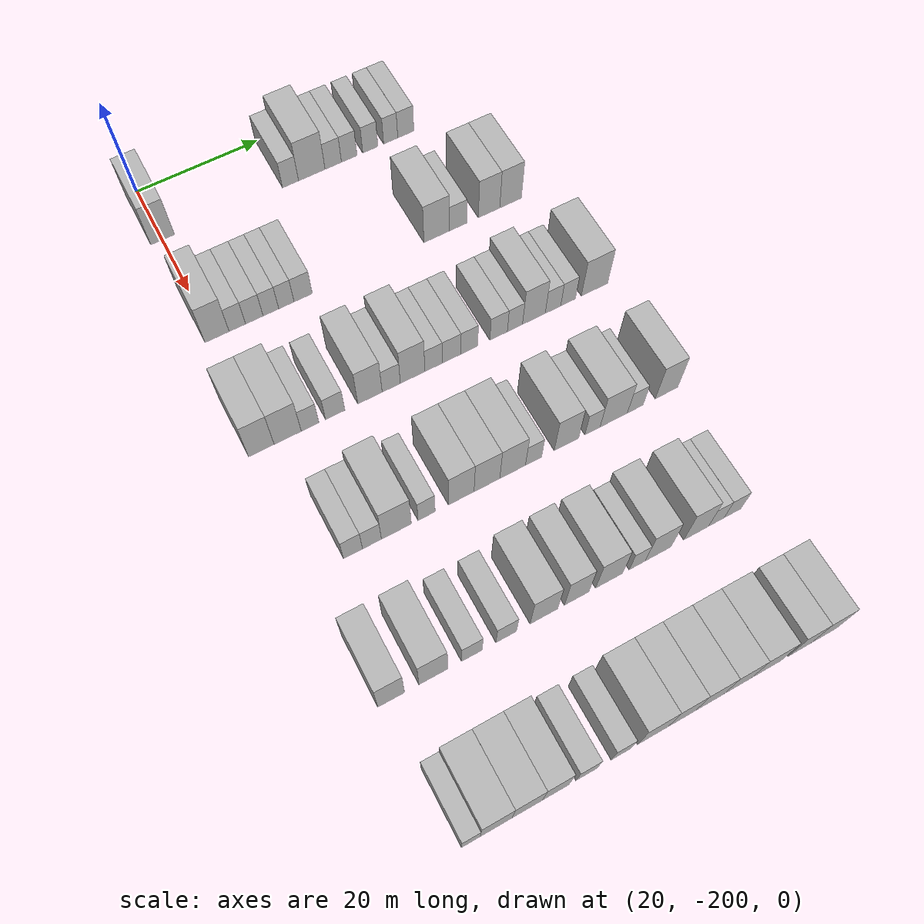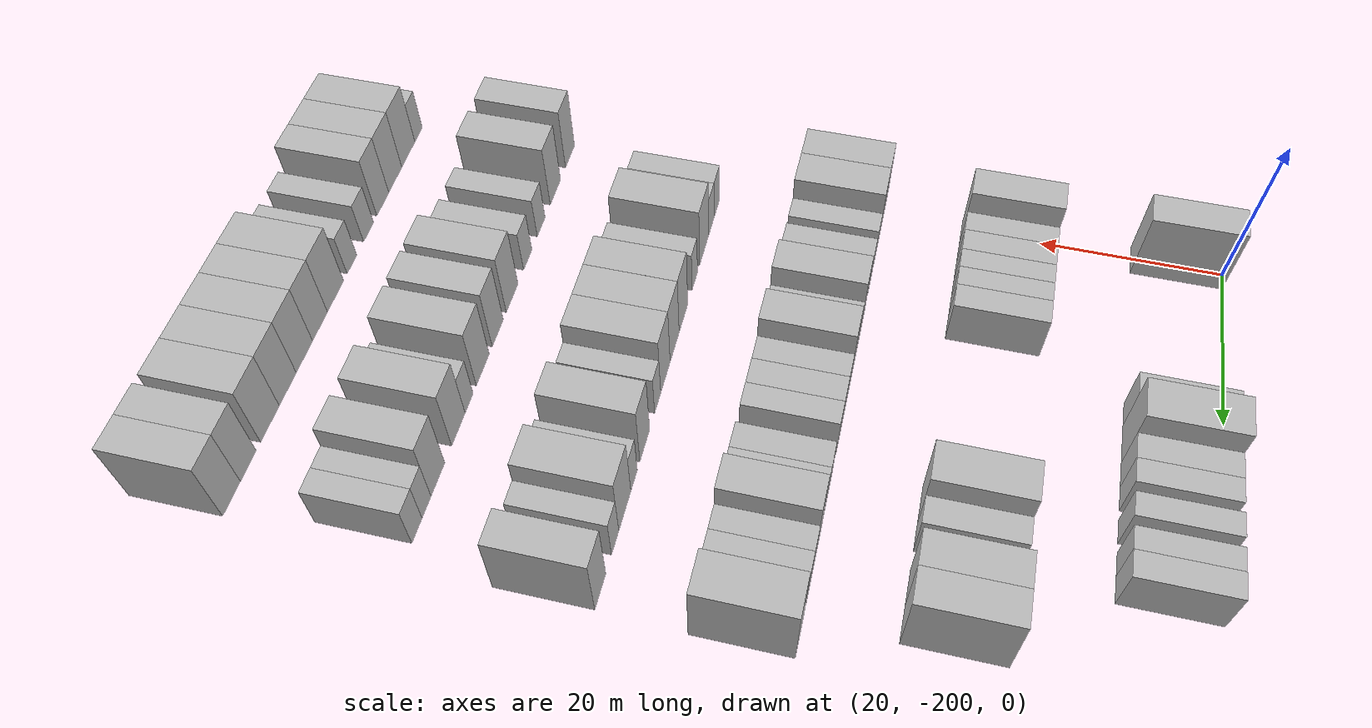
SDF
<sdf version="1.6">
 <world name="default">
  <model name="building_36">
   <static>1</static>
   <pose>25.0000 -199.8951 0 0.000000 0.000000 0.000000</pose>
   <link name="link">
    <pose>0 0 4.50 0 0 0</pose>
    <collision name="collision"><geometry><box><size>10.0000 3.7905 9.0000</size></box></geometry></collision>
    <visual name="visual">
     <cast_shadows>0</cast_shadows>
     <geometry><box><size>10.0000 3.7905 9.0000</size></box></geometry>
     <material>
      <script>
       <uri>model://HANNAS_wall/materials/scripts</uri>
       <uri>model://HANNAS_wall/materials/textures</uri>
       <name>vrc/HANNAS_wall</name>
      </script>
     </material>
    </visual>
   </link>
  </model>
  <model name="building_37">
   <static>1</static>
   <pose>25.0000 -178.9558 0 0.000000 0.000000 0.000000</pose>
   <link name="link">
    <pose>0 0 3.00 0 0 0</pose>
    <collision name="collision"><geometry><box><size>10.0000 2.6960 6.0000</size></box></geometry></collision>
    <visual name="visual">
     <cast_shadows>0</cast_shadows>
     <geometry><box><size>10.0000 2.6960 6.0000</size></box></geometry>
     <material>
      <script>
       <uri>model://HANNAS_wall/materials/scripts</uri>
       <uri>model://HANNAS_wall/materials/textures</uri>
       <name>vrc/HANNAS_wall</name>
      </script>
     </material>
    </visual>
   </link>
  </model>
  <model name="building_38">
   <static>1</static>
   <pose>25.0000 -175.3638 0 0.000000 0.000000 0.000000</pose>
   <link name="link">
    <pose>0 0 4.50 0 0 0</pose>
    <collision name="collision"><geometry><box><size>10.0000 4.4880 9.0000</size></box></geometry></collision>
    <visual name="visual">
     <cast_shadows>0</cast_shadows>
     <geometry><box><size>10.0000 4.4880 9.0000</size></box></geometry>
     <material>
      <script>
       <uri>model://HANNAS_wall/materials/scripts</uri>
       <uri>model://HANNAS_wall/materials/textures</uri>
       <name>vrc/HANNAS_wall</name>
      </script>
     </material>
    </visual>
   </link>
  </model>
  <model name="building_39">
   <static>1</static>
   <pose>25.0000 -171.7148 0 0.000000 0.000000 0.000000</pose>
   <link name="link">
    <pose>0 0 3.00 0 0 0</pose>
    <collision name="collision"><geometry><box><size>10.0000 2.8102 6.0000</size></box></geometry></collision>
    <visual name="visual">
     <cast_shadows>0</cast_shadows>
     <geometry><box><size>10.0000 2.8102 6.0000</size></box></geometry>
     <material>
      <script>
       <uri>model://HANNAS_wall/materials/scripts</uri>
       <uri>model://HANNAS_wall/materials/textures</uri>
       <name>vrc/HANNAS_wall</name>
      </script>
     </material>
    </visual>
   </link>
  </model>
  <model name="building_40">
   <static>1</static>
   <pose>25.0000 -168.9793 0 0.000000 0.000000 0.000000</pose>
   <link name="link">
    <pose>0 0 3.00 0 0 0</pose>
    <collision name="collision"><geometry><box><size>10.0000 2.6607 6.0000</size></box></geometry></collision>
    <visual name="visual">
     <cast_shadows>0</cast_shadows>
     <geometry><box><size>10.0000 2.6607 6.0000</size></box></geometry>
     <material>
      <script>
       <uri>model://HANNAS_wall/materials/scripts</uri>
       <uri>model://HANNAS_wall/materials/textures</uri>
       <name>vrc/HANNAS_wall</name>
      </script>
     </material>
    </visual>
   </link>
  </model>
  <model name="building_41">
   <static>1</static>
   <pose>25.0000 -165.3395 0 0.000000 0.000000 0.000000</pose>
   <link name="link">
    <pose>0 0 3.00 0 0 0</pose>
    <collision name="collision"><geometry><box><size>10.0000 2.6189 6.0000</size></box></geometry></collision>
    <visual name="visual">
     <cast_shadows>0</cast_shadows>
     <geometry><box><size>10.0000 2.6189 6.0000</size></box></geometry>
     <material>
      <script>
       <uri>model://HANNAS_wall/materials/scripts</uri>
       <uri>model://HANNAS_wall/materials/textures</uri>
       <name>vrc/HANNAS_wall</name>
      </script>
     </material>
    </visual>
   </link>
  </model>
  <model name="building_42">
   <static>1</static>
   <pose>25.0000 -161.7983 0 0.000000 0.000000 0.000000</pose>
   <link name="link">
    <pose>0 0 3.00 0 0 0</pose>
    <collision name="collision"><geometry><box><size>10.0000 2.4634 6.0000</size></box></geometry></collision>
    <visual name="visual">
     <cast_shadows>0</cast_shadows>
     <geometry><box><size>10.0000 2.4634 6.0000</size></box></geometry>
     <material>
      <script>
       <uri>model://HANNAS_wall/materials/scripts</uri>
       <uri>model://HANNAS_wall/materials/textures</uri>
       <name>vrc/HANNAS_wall</name>
      </script>
     </material>
    </visual>
   </link>
  </model>
  <model name="building_43">
   <static>1</static>
   <pose>25.0000 -159.1537 0 0.000000 0.000000 0.000000</pose>
   <link name="link">
    <pose>0 0 3.00 0 0 0</pose>
    <collision name="collision"><geometry><box><size>10.0000 2.8257 6.0000</size></box></geometry></collision>
    <visual name="visual">
     <cast_shadows>0</cast_shadows>
     <geometry><box><size>10.0000 2.8257 6.0000</size></box></geometry>
     <material>
      <script>
       <uri>model://HANNAS_wall/materials/scripts</uri>
       <uri>model://HANNAS_wall/materials/textures</uri>
       <name>vrc/HANNAS_wall</name>
      </script>
     </material>
    </visual>
   </link>
  </model>
  <model name="building_207">
   <static>1</static>
   <pose>44.0000 -199.3851 0 0.000000 0.000000 0.000000</pose>
   <link name="link">
    <pose>0 0 4.50 0 0 0</pose>
    <collision name="collision"><geometry><box><size>10.0000 3.7410 9.0000</size></box></geometry></collision>
    <visual name="visual">
     <cast_shadows>0</cast_shadows>
     <geometry><box><size>10.0000 3.7410 9.0000</size></box></geometry>
     <material>
      <script>
       <uri>model://HANNAS_wall/materials/scripts</uri>
       <uri>model://HANNAS_wall/materials/textures</uri>
       <name>vrc/HANNAS_wall</name>
      </script>
     </material>
    </visual>
   </link>
  </model>
  <model name="building_208">
   <static>1</static>
   <pose>44.0000 -196.2349 0 0.000000 0.000000 0.000000</pose>
   <link name="link">
    <pose>0 0 3.00 0 0 0</pose>
    <collision name="collision"><geometry><box><size>10.0000 2.5594 6.0000</size></box></geometry></collision>
    <visual name="visual">
     <cast_shadows>0</cast_shadows>
     <geometry><box><size>10.0000 2.5594 6.0000</size></box></geometry>
     <material>
      <script>
       <uri>model://HANNAS_wall/materials/scripts</uri>
       <uri>model://HANNAS_wall/materials/textures</uri>
       <name>vrc/HANNAS_wall</name>
      </script>
     </material>
    </visual>
   </link>
  </model>
  <model name="building_209">
   <static>1</static>
   <pose>44.0000 -193.5781 0 0.000000 0.000000 0.000000</pose>
   <link name="link">
    <pose>0 0 3.00 0 0 0</pose>
    <collision name="collision"><geometry><box><size>10.0000 2.7541 6.0000</size></box></geometry></collision>
    <visual name="visual">
     <cast_shadows>0</cast_shadows>
     <geometry><box><size>10.0000 2.7541 6.0000</size></box></geometry>
     <material>
      <script>
       <uri>model://HANNAS_wall/materials/scripts</uri>
       <uri>model://HANNAS_wall/materials/textures</uri>
       <name>vrc/HANNAS_wall</name>
      </script>
     </material>
    </visual>
   </link>
  </model>
  <model name="building_210">
   <static>1</static>
   <pose>44.0000 -190.9653 0 0.000000 0.000000 0.000000</pose>
   <link name="link">
    <pose>0 0 3.00 0 0 0</pose>
    <collision name="collision"><geometry><box><size>10.0000 2.4714 6.0000</size></box></geometry></collision>
    <visual name="visual">
     <cast_shadows>0</cast_shadows>
     <geometry><box><size>10.0000 2.4714 6.0000</size></box></geometry>
     <material>
      <script>
       <uri>model://HANNAS_wall/materials/scripts</uri>
       <uri>model://HANNAS_wall/materials/textures</uri>
       <name>vrc/HANNAS_wall</name>
      </script>
     </material>
    </visual>
   </link>
  </model>
  <model name="building_211">
   <static>1</static>
   <pose>44.0000 -188.5136 0 0.000000 0.000000 0.000000</pose>
   <link name="link">
    <pose>0 0 3.00 0 0 0</pose>
    <collision name="collision"><geometry><box><size>10.0000 2.4321 6.0000</size></box></geometry></collision>
    <visual name="visual">
     <cast_shadows>0</cast_shadows>
     <geometry><box><size>10.0000 2.4321 6.0000</size></box></geometry>
     <material>
      <script>
       <uri>model://HANNAS_wall/materials/scripts</uri>
       <uri>model://HANNAS_wall/materials/textures</uri>
       <name>vrc/HANNAS_wall</name>
      </script>
     </material>
    </visual>
   </link>
  </model>
  <model name="building_212">
   <static>1</static>
   <pose>44.0000 -185.8358 0 0.000000 0.000000 0.000000</pose>
   <link name="link">
    <pose>0 0 3.00 0 0 0</pose>
    <collision name="collision"><geometry><box><size>10.0000 2.9234 6.0000</size></box></geometry></collision>
    <visual name="visual">
     <cast_shadows>0</cast_shadows>
     <geometry><box><size>10.0000 2.9234 6.0000</size></box></geometry>
     <material>
      <script>
       <uri>model://HANNAS_wall/materials/scripts</uri>
       <uri>model://HANNAS_wall/materials/textures</uri>
       <name>vrc/HANNAS_wall</name>
      </script>
     </material>
    </visual>
   </link>
  </model>
  <model name="building_213">
   <static>1</static>
   <pose>44.0000 -163.8995 0 0.000000 0.000000 0.000000</pose>
   <link name="link">
    <pose>0 0 4.50 0 0 0</pose>
    <collision name="collision"><geometry><box><size>10.0000 4.3163 9.0000</size></box></geometry></collision>
    <visual name="visual">
     <cast_shadows>0</cast_shadows>
     <geometry><box><size>10.0000 4.3163 9.0000</size></box></geometry>
     <material>
      <script>
       <uri>model://HANNAS_wall/materials/scripts</uri>
       <uri>model://HANNAS_wall/materials/textures</uri>
       <name>vrc/HANNAS_wall</name>
      </script>
     </material>
    </visual>
   </link>
  </model>
  <model name="building_214">
   <static>1</static>
   <pose>44.0000 -160.2785 0 0.000000 0.000000 0.000000</pose>
   <link name="link">
    <pose>0 0 3.00 0 0 0</pose>
    <collision name="collision"><geometry><box><size>10.0000 2.9256 6.0000</size></box></geometry></collision>
    <visual name="visual">
     <cast_shadows>0</cast_shadows>
     <geometry><box><size>10.0000 2.9256 6.0000</size></box></geometry>
     <material>
      <script>
       <uri>model://HANNAS_wall/materials/scripts</uri>
       <uri>model://HANNAS_wall/materials/textures</uri>
       <name>vrc/HANNAS_wall</name>
      </script>
     </material>
    </visual>
   </link>
  </model>
  <model name="building_215">
   <static>1</static>
   <pose>44.0000 -154.9602 0 0.000000 0.000000 0.000000</pose>
   <link name="link">
    <pose>0 0 4.50 0 0 0</pose>
    <collision name="collision"><geometry><box><size>10.0000 3.7112 9.0000</size></box></geometry></collision>
    <visual name="visual">
     <cast_shadows>0</cast_shadows>
     <geometry><box><size>10.0000 3.7112 9.0000</size></box></geometry>
     <material>
      <script>
       <uri>model://HANNAS_wall/materials/scripts</uri>
       <uri>model://HANNAS_wall/materials/textures</uri>
       <name>vrc/HANNAS_wall</name>
      </script>
     </material>
    </visual>
   </link>
  </model>
  <model name="building_216">
   <static>1</static>
   <pose>44.0000 -151.2277 0 0.000000 0.000000 0.000000</pose>
   <link name="link">
    <pose>0 0 4.50 0 0 0</pose>
    <collision name="collision"><geometry><box><size>10.0000 3.7538 9.0000</size></box></geometry></collision>
    <visual name="visual">
     <cast_shadows>0</cast_shadows>
     <geometry><box><size>10.0000 3.7538 9.0000</size></box></geometry>
     <material>
      <script>
       <uri>model://HANNAS_wall/materials/scripts</uri>
       <uri>model://HANNAS_wall/materials/textures</uri>
       <name>vrc/HANNAS_wall</name>
      </script>
     </material>
    </visual>
   </link>
  </model>
  <model name="building_365">
   <static>1</static>
   <pose>63.0000 -201.1280 0 0.000000 0.000000 0.000000</pose>
   <link name="link">
    <pose>0 0 4.50 0 0 0</pose>
    <collision name="collision"><geometry><box><size>10.0000 3.8105 9.0000</size></box></geometry></collision>
    <visual name="visual">
     <cast_shadows>0</cast_shadows>
     <geometry><box><size>10.0000 3.8105 9.0000</size></box></geometry>
     <material>
      <script>
       <uri>model://HANNAS_wall/materials/scripts</uri>
       <uri>model://HANNAS_wall/materials/textures</uri>
       <name>vrc/HANNAS_wall</name>
      </script>
     </material>
    </visual>
   </link>
  </model>
  <model name="building_366">
   <static>1</static>
   <pose>63.0000 -197.1783 0 0.000000 0.000000 0.000000</pose>
   <link name="link">
    <pose>0 0 4.50 0 0 0</pose>
    <collision name="collision"><geometry><box><size>10.0000 4.0891 9.0000</size></box></geometry></collision>
    <visual name="visual">
     <cast_shadows>0</cast_shadows>
     <geometry><box><size>10.0000 4.0891 9.0000</size></box></geometry>
     <material>
      <script>
       <uri>model://HANNAS_wall/materials/scripts</uri>
       <uri>model://HANNAS_wall/materials/textures</uri>
       <name>vrc/HANNAS_wall</name>
      </script>
     </material>
    </visual>
   </link>
  </model>
  <model name="building_367">
   <static>1</static>
   <pose>63.0000 -193.7952 0 0.000000 0.000000 0.000000</pose>
   <link name="link">
    <pose>0 0 3.00 0 0 0</pose>
    <collision name="collision"><geometry><box><size>10.0000 2.6770 6.0000</size></box></geometry></collision>
    <visual name="visual">
     <cast_shadows>0</cast_shadows>
     <geometry><box><size>10.0000 2.6770 6.0000</size></box></geometry>
     <material>
      <script>
       <uri>model://HANNAS_wall/materials/scripts</uri>
       <uri>model://HANNAS_wall/materials/textures</uri>
       <name>vrc/HANNAS_wall</name>
      </script>
     </material>
    </visual>
   </link>
  </model>
  <model name="building_368">
   <static>1</static>
   <pose>63.0000 -189.9776 0 0.000000 0.000000 0.000000</pose>
   <link name="link">
    <pose>0 0 3.00 0 0 0</pose>
    <collision name="collision"><geometry><box><size>10.0000 2.9584 6.0000</size></box></geometry></collision>
    <visual name="visual">
     <cast_shadows>0</cast_shadows>
     <geometry><box><size>10.0000 2.9584 6.0000</size></box></geometry>
     <material>
      <script>
       <uri>model://HANNAS_wall/materials/scripts</uri>
       <uri>model://HANNAS_wall/materials/textures</uri>
       <name>vrc/HANNAS_wall</name>
      </script>
     </material>
    </visual>
   </link>
  </model>
  <model name="building_369">
   <static>1</static>
   <pose>63.0000 -184.6046 0 0.000000 0.000000 0.000000</pose>
   <link name="link">
    <pose>0 0 4.50 0 0 0</pose>
    <collision name="collision"><geometry><box><size>10.0000 3.7876 9.0000</size></box></geometry></collision>
    <visual name="visual">
     <cast_shadows>0</cast_shadows>
     <geometry><box><size>10.0000 3.7876 9.0000</size></box></geometry>
     <material>
      <script>
       <uri>model://HANNAS_wall/materials/scripts</uri>
       <uri>model://HANNAS_wall/materials/textures</uri>
       <name>vrc/HANNAS_wall</name>
      </script>
     </material>
    </visual>
   </link>
  </model>
  <model name="building_370">
   <static>1</static>
   <pose>63.0000 -181.2891 0 0.000000 0.000000 0.000000</pose>
   <link name="link">
    <pose>0 0 3.00 0 0 0</pose>
    <collision name="collision"><geometry><box><size>10.0000 2.8435 6.0000</size></box></geometry></collision>
    <visual name="visual">
     <cast_shadows>0</cast_shadows>
     <geometry><box><size>10.0000 2.8435 6.0000</size></box></geometry>
     <material>
      <script>
       <uri>model://HANNAS_wall/materials/scripts</uri>
       <uri>model://HANNAS_wall/materials/textures</uri>
       <name>vrc/HANNAS_wall</name>
      </script>
     </material>
    </visual>
   </link>
  </model>
  <model name="building_371">
   <static>1</static>
   <pose>63.0000 -177.9295 0 0.000000 0.000000 0.000000</pose>
   <link name="link">
    <pose>0 0 4.50 0 0 0</pose>
    <collision name="collision"><geometry><box><size>10.0000 3.8757 9.0000</size></box></geometry></collision>
    <visual name="visual">
     <cast_shadows>0</cast_shadows>
     <geometry><box><size>10.0000 3.8757 9.0000</size></box></geometry>
     <material>
      <script>
       <uri>model://HANNAS_wall/materials/scripts</uri>
       <uri>model://HANNAS_wall/materials/textures</uri>
       <name>vrc/HANNAS_wall</name>
      </script>
     </material>
    </visual>
   </link>
  </model>
  <model name="building_372">
   <static>1</static>
   <pose>63.0000 -174.5939 0 0.000000 0.000000 0.000000</pose>
   <link name="link">
    <pose>0 0 3.00 0 0 0</pose>
    <collision name="collision"><geometry><box><size>10.0000 2.7954 6.0000</size></box></geometry></collision>
    <visual name="visual">
     <cast_shadows>0</cast_shadows>
     <geometry><box><size>10.0000 2.7954 6.0000</size></box></geometry>
     <material>
      <script>
       <uri>model://HANNAS_wall/materials/scripts</uri>
       <uri>model://HANNAS_wall/materials/textures</uri>
       <name>vrc/HANNAS_wall</name>
      </script>
     </material>
    </visual>
   </link>
  </model>
  <model name="building_373">
   <static>1</static>
   <pose>63.0000 -171.7202 0 0.000000 0.000000 0.000000</pose>
   <link name="link">
    <pose>0 0 3.00 0 0 0</pose>
    <collision name="collision"><geometry><box><size>10.0000 2.9521 6.0000</size></box></geometry></collision>
    <visual name="visual">
     <cast_shadows>0</cast_shadows>
     <geometry><box><size>10.0000 2.9521 6.0000</size></box></geometry>
     <material>
      <script>
       <uri>model://HANNAS_wall/materials/scripts</uri>
       <uri>model://HANNAS_wall/materials/textures</uri>
       <name>vrc/HANNAS_wall</name>
      </script>
     </material>
    </visual>
   </link>
  </model>
  <model name="building_374">
   <static>1</static>
   <pose>63.0000 -168.8897 0 0.000000 0.000000 0.000000</pose>
   <link name="link">
    <pose>0 0 3.00 0 0 0</pose>
    <collision name="collision"><geometry><box><size>10.0000 2.7090 6.0000</size></box></geometry></collision>
    <visual name="visual">
     <cast_shadows>0</cast_shadows>
     <geometry><box><size>10.0000 2.7090 6.0000</size></box></geometry>
     <material>
      <script>
       <uri>model://HANNAS_wall/materials/scripts</uri>
       <uri>model://HANNAS_wall/materials/textures</uri>
       <name>vrc/HANNAS_wall</name>
      </script>
     </material>
    </visual>
   </link>
  </model>
  <model name="building_375">
   <static>1</static>
   <pose>63.0000 -164.1060 0 0.000000 0.000000 0.000000</pose>
   <link name="link">
    <pose>0 0 3.00 0 0 0</pose>
    <collision name="collision"><geometry><box><size>10.0000 2.8584 6.0000</size></box></geometry></collision>
    <visual name="visual">
     <cast_shadows>0</cast_shadows>
     <geometry><box><size>10.0000 2.8584 6.0000</size></box></geometry>
     <material>
      <script>
       <uri>model://HANNAS_wall/materials/scripts</uri>
       <uri>model://HANNAS_wall/materials/textures</uri>
       <name>vrc/HANNAS_wall</name>
      </script>
     </material>
    </visual>
   </link>
  </model>
  <model name="building_376">
   <static>1</static>
   <pose>63.0000 -161.4242 0 0.000000 0.000000 0.000000</pose>
   <link name="link">
    <pose>0 0 3.00 0 0 0</pose>
    <collision name="collision"><geometry><box><size>10.0000 2.5052 6.0000</size></box></geometry></collision>
    <visual name="visual">
     <cast_shadows>0</cast_shadows>
     <geometry><box><size>10.0000 2.5052 6.0000</size></box></geometry>
     <material>
      <script>
       <uri>model://HANNAS_wall/materials/scripts</uri>
       <uri>model://HANNAS_wall/materials/textures</uri>
       <name>vrc/HANNAS_wall</name>
      </script>
     </material>
    </visual>
   </link>
  </model>
  <model name="building_377">
   <static>1</static>
   <pose>63.0000 -158.2855 0 0.000000 0.000000 0.000000</pose>
   <link name="link">
    <pose>0 0 4.50 0 0 0</pose>
    <collision name="collision"><geometry><box><size>10.0000 3.7723 9.0000</size></box></geometry></collision>
    <visual name="visual">
     <cast_shadows>0</cast_shadows>
     <geometry><box><size>10.0000 3.7723 9.0000</size></box></geometry>
     <material>
      <script>
       <uri>model://HANNAS_wall/materials/scripts</uri>
       <uri>model://HANNAS_wall/materials/textures</uri>
       <name>vrc/HANNAS_wall</name>
      </script>
     </material>
    </visual>
   </link>
  </model>
  <model name="building_378">
   <static>1</static>
   <pose>63.0000 -155.1000 0 0.000000 0.000000 0.000000</pose>
   <link name="link">
    <pose>0 0 3.00 0 0 0</pose>
    <collision name="collision"><geometry><box><size>10.0000 2.5987 6.0000</size></box></geometry></collision>
    <visual name="visual">
     <cast_shadows>0</cast_shadows>
     <geometry><box><size>10.0000 2.5987 6.0000</size></box></geometry>
     <material>
      <script>
       <uri>model://HANNAS_wall/materials/scripts</uri>
       <uri>model://HANNAS_wall/materials/textures</uri>
       <name>vrc/HANNAS_wall</name>
      </script>
     </material>
    </visual>
   </link>
  </model>
  <model name="building_379">
   <static>1</static>
   <pose>63.0000 -152.5609 0 0.000000 0.000000 0.000000</pose>
   <link name="link">
    <pose>0 0 3.00 0 0 0</pose>
    <collision name="collision"><geometry><box><size>10.0000 2.4796 6.0000</size></box></geometry></collision>
    <visual name="visual">
     <cast_shadows>0</cast_shadows>
     <geometry><box><size>10.0000 2.4796 6.0000</size></box></geometry>
     <material>
      <script>
       <uri>model://HANNAS_wall/materials/scripts</uri>
       <uri>model://HANNAS_wall/materials/textures</uri>
       <name>vrc/HANNAS_wall</name>
      </script>
     </material>
    </visual>
   </link>
  </model>
  <model name="building_380">
   <static>1</static>
   <pose>63.0000 -148.0831 0 0.000000 0.000000 0.000000</pose>
   <link name="link">
    <pose>0 0 4.50 0 0 0</pose>
    <collision name="collision"><geometry><box><size>10.0000 4.4760 9.0000</size></box></geometry></collision>
    <visual name="visual">
     <cast_shadows>0</cast_shadows>
     <geometry><box><size>10.0000 4.4760 9.0000</size></box></geometry>
     <material>
      <script>
       <uri>model://HANNAS_wall/materials/scripts</uri>
       <uri>model://HANNAS_wall/materials/textures</uri>
       <name>vrc/HANNAS_wall</name>
      </script>
     </material>
    </visual>
   </link>
  </model>
  <model name="building_535">
   <static>1</static>
   <pose>82.0000 -196.6924 0 0.000000 0.000000 0.000000</pose>
   <link name="link">
    <pose>0 0 3.00 0 0 0</pose>
    <collision name="collision"><geometry><box><size>10.0000 2.7742 6.0000</size></box></geometry></collision>
    <visual name="visual">
     <cast_shadows>0</cast_shadows>
     <geometry><box><size>10.0000 2.7742 6.0000</size></box></geometry>
     <material>
      <script>
       <uri>model://HANNAS_wall/materials/scripts</uri>
       <uri>model://HANNAS_wall/materials/textures</uri>
       <name>vrc/HANNAS_wall</name>
      </script>
     </material>
    </visual>
   </link>
  </model>
  <model name="building_536">
   <static>1</static>
   <pose>82.0000 -193.9210 0 0.000000 0.000000 0.000000</pose>
   <link name="link">
    <pose>0 0 3.00 0 0 0</pose>
    <collision name="collision"><geometry><box><size>10.0000 2.7686 6.0000</size></box></geometry></collision>
    <visual name="visual">
     <cast_shadows>0</cast_shadows>
     <geometry><box><size>10.0000 2.7686 6.0000</size></box></geometry>
     <material>
      <script>
       <uri>model://HANNAS_wall/materials/scripts</uri>
       <uri>model://HANNAS_wall/materials/textures</uri>
       <name>vrc/HANNAS_wall</name>
      </script>
     </material>
    </visual>
   </link>
  </model>
  <model name="building_537">
   <static>1</static>
   <pose>82.0000 -190.3299 0 0.000000 0.000000 0.000000</pose>
   <link name="link">
    <pose>0 0 4.50 0 0 0</pose>
    <collision name="collision"><geometry><box><size>10.0000 4.4136 9.0000</size></box></geometry></collision>
    <visual name="visual">
     <cast_shadows>0</cast_shadows>
     <geometry><box><size>10.0000 4.4136 9.0000</size></box></geometry>
     <material>
      <script>
       <uri>model://HANNAS_wall/materials/scripts</uri>
       <uri>model://HANNAS_wall/materials/textures</uri>
       <name>vrc/HANNAS_wall</name>
      </script>
     </material>
    </visual>
   </link>
  </model>
  <model name="building_538">
   <static>1</static>
   <pose>82.0000 -185.8463 0 0.000000 0.000000 0.000000</pose>
   <link name="link">
    <pose>0 0 3.00 0 0 0</pose>
    <collision name="collision"><geometry><box><size>10.0000 2.5536 6.0000</size></box></geometry></collision>
    <visual name="visual">
     <cast_shadows>0</cast_shadows>
     <geometry><box><size>10.0000 2.5536 6.0000</size></box></geometry>
     <material>
      <script>
       <uri>model://HANNAS_wall/materials/scripts</uri>
       <uri>model://HANNAS_wall/materials/textures</uri>
       <name>vrc/HANNAS_wall</name>
      </script>
     </material>
    </visual>
   </link>
  </model>
  <model name="building_539">
   <static>1</static>
   <pose>82.0000 -180.6220 0 0.000000 0.000000 0.000000</pose>
   <link name="link">
    <pose>0 0 4.50 0 0 0</pose>
    <collision name="collision"><geometry><box><size>10.0000 3.8952 9.0000</size></box></geometry></collision>
    <visual name="visual">
     <cast_shadows>0</cast_shadows>
     <geometry><box><size>10.0000 3.8952 9.0000</size></box></geometry>
     <material>
      <script>
       <uri>model://HANNAS_wall/materials/scripts</uri>
       <uri>model://HANNAS_wall/materials/textures</uri>
       <name>vrc/HANNAS_wall</name>
      </script>
     </material>
    </visual>
   </link>
  </model>
  <model name="building_540">
   <static>1</static>
   <pose>82.0000 -176.6972 0 0.000000 0.000000 0.000000</pose>
   <link name="link">
    <pose>0 0 4.50 0 0 0</pose>
    <collision name="collision"><geometry><box><size>10.0000 3.9542 9.0000</size></box></geometry></collision>
    <visual name="visual">
     <cast_shadows>0</cast_shadows>
     <geometry><box><size>10.0000 3.9542 9.0000</size></box></geometry>
     <material>
      <script>
       <uri>model://HANNAS_wall/materials/scripts</uri>
       <uri>model://HANNAS_wall/materials/textures</uri>
       <name>vrc/HANNAS_wall</name>
      </script>
     </material>
    </visual>
   </link>
  </model>
  <model name="building_541">
   <static>1</static>
   <pose>82.0000 -172.7290 0 0.000000 0.000000 0.000000</pose>
   <link name="link">
    <pose>0 0 4.50 0 0 0</pose>
    <collision name="collision"><geometry><box><size>10.0000 3.9822 9.0000</size></box></geometry></collision>
    <visual name="visual">
     <cast_shadows>0</cast_shadows>
     <geometry><box><size>10.0000 3.9822 9.0000</size></box></geometry>
     <material>
      <script>
       <uri>model://HANNAS_wall/materials/scripts</uri>
       <uri>model://HANNAS_wall/materials/textures</uri>
       <name>vrc/HANNAS_wall</name>
      </script>
     </material>
    </visual>
   </link>
  </model>
  <model name="building_542">
   <static>1</static>
   <pose>82.0000 -169.4771 0 0.000000 0.000000 0.000000</pose>
   <link name="link">
    <pose>0 0 3.00 0 0 0</pose>
    <collision name="collision"><geometry><box><size>10.0000 2.5218 6.0000</size></box></geometry></collision>
    <visual name="visual">
     <cast_shadows>0</cast_shadows>
     <geometry><box><size>10.0000 2.5218 6.0000</size></box></geometry>
     <material>
      <script>
       <uri>model://HANNAS_wall/materials/scripts</uri>
       <uri>model://HANNAS_wall/materials/textures</uri>
       <name>vrc/HANNAS_wall</name>
      </script>
     </material>
    </visual>
   </link>
  </model>
  <model name="building_543">
   <static>1</static>
   <pose>82.0000 -164.2832 0 0.000000 0.000000 0.000000</pose>
   <link name="link">
    <pose>0 0 4.50 0 0 0</pose>
    <collision name="collision"><geometry><box><size>10.0000 3.8660 9.0000</size></box></geometry></collision>
    <visual name="visual">
     <cast_shadows>0</cast_shadows>
     <geometry><box><size>10.0000 3.8660 9.0000</size></box></geometry>
     <material>
      <script>
       <uri>model://HANNAS_wall/materials/scripts</uri>
       <uri>model://HANNAS_wall/materials/textures</uri>
       <name>vrc/HANNAS_wall</name>
      </script>
     </material>
    </visual>
   </link>
  </model>
  <model name="building_544">
   <static>1</static>
   <pose>82.0000 -160.1364 0 0.000000 0.000000 0.000000</pose>
   <link name="link">
    <pose>0 0 3.00 0 0 0</pose>
    <collision name="collision"><geometry><box><size>10.0000 2.4275 6.0000</size></box></geometry></collision>
    <visual name="visual">
     <cast_shadows>0</cast_shadows>
     <geometry><box><size>10.0000 2.4275 6.0000</size></box></geometry>
     <material>
      <script>
       <uri>model://HANNAS_wall/materials/scripts</uri>
       <uri>model://HANNAS_wall/materials/textures</uri>
       <name>vrc/HANNAS_wall</name>
      </script>
     </material>
    </visual>
   </link>
  </model>
  <model name="building_545">
   <static>1</static>
   <pose>82.0000 -156.7088 0 0.000000 0.000000 0.000000</pose>
   <link name="link">
    <pose>0 0 4.50 0 0 0</pose>
    <collision name="collision"><geometry><box><size>10.0000 4.4278 9.0000</size></box></geometry></collision>
    <visual name="visual">
     <cast_shadows>0</cast_shadows>
     <geometry><box><size>10.0000 4.4278 9.0000</size></box></geometry>
     <material>
      <script>
       <uri>model://HANNAS_wall/materials/scripts</uri>
       <uri>model://HANNAS_wall/materials/textures</uri>
       <name>vrc/HANNAS_wall</name>
      </script>
     </material>
    </visual>
   </link>
  </model>
  <model name="building_546">
   <static>1</static>
   <pose>82.0000 -153.2072 0 0.000000 0.000000 0.000000</pose>
   <link name="link">
    <pose>0 0 3.00 0 0 0</pose>
    <collision name="collision"><geometry><box><size>10.0000 2.5754 6.0000</size></box></geometry></collision>
    <visual name="visual">
     <cast_shadows>0</cast_shadows>
     <geometry><box><size>10.0000 2.5754 6.0000</size></box></geometry>
     <material>
      <script>
       <uri>model://HANNAS_wall/materials/scripts</uri>
       <uri>model://HANNAS_wall/materials/textures</uri>
       <name>vrc/HANNAS_wall</name>
      </script>
     </material>
    </visual>
   </link>
  </model>
  <model name="building_547">
   <static>1</static>
   <pose>82.0000 -148.0648 0 0.000000 0.000000 0.000000</pose>
   <link name="link">
    <pose>0 0 4.50 0 0 0</pose>
    <collision name="collision"><geometry><box><size>10.0000 3.7093 9.0000</size></box></geometry></collision>
    <visual name="visual">
     <cast_shadows>0</cast_shadows>
     <geometry><box><size>10.0000 3.7093 9.0000</size></box></geometry>
     <material>
      <script>
       <uri>model://HANNAS_wall/materials/scripts</uri>
       <uri>model://HANNAS_wall/materials/textures</uri>
       <name>vrc/HANNAS_wall</name>
      </script>
     </material>
    </visual>
   </link>
  </model>
  <model name="building_710">
   <static>1</static>
   <pose>101.0000 -200.9009 0 0.000000 0.000000 0.000000</pose>
   <link name="link">
    <pose>0 0 4.50 0 0 0</pose>
    <collision name="collision"><geometry><box><size>10.0000 3.7021 9.0000</size></box></geometry></collision>
    <visual name="visual">
     <cast_shadows>0</cast_shadows>
     <geometry><box><size>10.0000 3.7021 9.0000</size></box></geometry>
     <material>
      <script>
       <uri>model://HANNAS_wall/materials/scripts</uri>
       <uri>model://HANNAS_wall/materials/textures</uri>
       <name>vrc/HANNAS_wall</name>
      </script>
     </material>
    </visual>
   </link>
  </model>
  <model name="building_711">
   <static>1</static>
   <pose>101.0000 -195.0398 0 0.000000 0.000000 0.000000</pose>
   <link name="link">
    <pose>0 0 4.50 0 0 0</pose>
    <collision name="collision"><geometry><box><size>10.0000 4.0200 9.0000</size></box></geometry></collision>
    <visual name="visual">
     <cast_shadows>0</cast_shadows>
     <geometry><box><size>10.0000 4.0200 9.0000</size></box></geometry>
     <material>
      <script>
       <uri>model://HANNAS_wall/materials/scripts</uri>
       <uri>model://HANNAS_wall/materials/textures</uri>
       <name>vrc/HANNAS_wall</name>
      </script>
     </material>
    </visual>
   </link>
  </model>
  <model name="building_712">
   <static>1</static>
   <pose>101.0000 -189.5615 0 0.000000 0.000000 0.000000</pose>
   <link name="link">
    <pose>0 0 3.00 0 0 0</pose>
    <collision name="collision"><geometry><box><size>10.0000 2.9366 6.0000</size></box></geometry></collision>
    <visual name="visual">
     <cast_shadows>0</cast_shadows>
     <geometry><box><size>10.0000 2.9366 6.0000</size></box></geometry>
     <material>
      <script>
       <uri>model://HANNAS_wall/materials/scripts</uri>
       <uri>model://HANNAS_wall/materials/textures</uri>
       <name>vrc/HANNAS_wall</name>
      </script>
     </material>
    </visual>
   </link>
  </model>
  <model name="building_713">
   <static>1</static>
   <pose>101.0000 -184.6010 0 0.000000 0.000000 0.000000</pose>
   <link name="link">
    <pose>0 0 3.00 0 0 0</pose>
    <collision name="collision"><geometry><box><size>10.0000 2.9844 6.0000</size></box></geometry></collision>
    <visual name="visual">
     <cast_shadows>0</cast_shadows>
     <geometry><box><size>10.0000 2.9844 6.0000</size></box></geometry>
     <material>
      <script>
       <uri>model://HANNAS_wall/materials/scripts</uri>
       <uri>model://HANNAS_wall/materials/textures</uri>
       <name>vrc/HANNAS_wall</name>
      </script>
     </material>
    </visual>
   </link>
  </model>
  <model name="building_714">
   <static>1</static>
   <pose>101.0000 -179.0791 0 0.000000 0.000000 0.000000</pose>
   <link name="link">
    <pose>0 0 4.50 0 0 0</pose>
    <collision name="collision"><geometry><box><size>10.0000 4.0595 9.0000</size></box></geometry></collision>
    <visual name="visual">
     <cast_shadows>0</cast_shadows>
     <geometry><box><size>10.0000 4.0595 9.0000</size></box></geometry>
     <material>
      <script>
       <uri>model://HANNAS_wall/materials/scripts</uri>
       <uri>model://HANNAS_wall/materials/textures</uri>
       <name>vrc/HANNAS_wall</name>
      </script>
     </material>
    </visual>
   </link>
  </model>
  <model name="building_715">
   <static>1</static>
   <pose>101.0000 -174.2146 0 0.000000 0.000000 0.000000</pose>
   <link name="link">
    <pose>0 0 4.50 0 0 0</pose>
    <collision name="collision"><geometry><box><size>10.0000 3.6694 9.0000</size></box></geometry></collision>
    <visual name="visual">
     <cast_shadows>0</cast_shadows>
     <geometry><box><size>10.0000 3.6694 9.0000</size></box></geometry>
     <material>
      <script>
       <uri>model://HANNAS_wall/materials/scripts</uri>
       <uri>model://HANNAS_wall/materials/textures</uri>
       <name>vrc/HANNAS_wall</name>
      </script>
     </material>
    </visual>
   </link>
  </model>
  <model name="building_716">
   <static>1</static>
   <pose>101.0000 -169.3302 0 0.000000 0.000000 0.000000</pose>
   <link name="link">
    <pose>0 0 4.50 0 0 0</pose>
    <collision name="collision"><geometry><box><size>10.0000 4.0994 9.0000</size></box></geometry></collision>
    <visual name="visual">
     <cast_shadows>0</cast_shadows>
     <geometry><box><size>10.0000 4.0994 9.0000</size></box></geometry>
     <material>
      <script>
       <uri>model://HANNAS_wall/materials/scripts</uri>
       <uri>model://HANNAS_wall/materials/textures</uri>
       <name>vrc/HANNAS_wall</name>
      </script>
     </material>
    </visual>
   </link>
  </model>
  <model name="building_717">
   <static>1</static>
   <pose>101.0000 -165.0529 0 0.000000 0.000000 0.000000</pose>
   <link name="link">
    <pose>0 0 3.00 0 0 0</pose>
    <collision name="collision"><geometry><box><size>10.0000 2.4552 6.0000</size></box></geometry></collision>
    <visual name="visual">
     <cast_shadows>0</cast_shadows>
     <geometry><box><size>10.0000 2.4552 6.0000</size></box></geometry>
     <material>
      <script>
       <uri>model://HANNAS_wall/materials/scripts</uri>
       <uri>model://HANNAS_wall/materials/textures</uri>
       <name>vrc/HANNAS_wall</name>
      </script>
     </material>
    </visual>
   </link>
  </model>
  <model name="building_718">
   <static>1</static>
   <pose>101.0000 -161.8215 0 0.000000 0.000000 0.000000</pose>
   <link name="link">
    <pose>0 0 4.50 0 0 0</pose>
    <collision name="collision"><geometry><box><size>10.0000 4.0076 9.0000</size></box></geometry></collision>
    <visual name="visual">
     <cast_shadows>0</cast_shadows>
     <geometry><box><size>10.0000 4.0076 9.0000</size></box></geometry>
     <material>
      <script>
       <uri>model://HANNAS_wall/materials/scripts</uri>
       <uri>model://HANNAS_wall/materials/textures</uri>
       <name>vrc/HANNAS_wall</name>
      </script>
     </material>
    </visual>
   </link>
  </model>
  <model name="building_719">
   <static>1</static>
   <pose>101.0000 -155.8762 0 0.000000 0.000000 0.000000</pose>
   <link name="link">
    <pose>0 0 4.50 0 0 0</pose>
    <collision name="collision"><geometry><box><size>10.0000 3.8830 9.0000</size></box></geometry></collision>
    <visual name="visual">
     <cast_shadows>0</cast_shadows>
     <geometry><box><size>10.0000 3.8830 9.0000</size></box></geometry>
     <material>
      <script>
       <uri>model://HANNAS_wall/materials/scripts</uri>
       <uri>model://HANNAS_wall/materials/textures</uri>
       <name>vrc/HANNAS_wall</name>
      </script>
     </material>
    </visual>
   </link>
  </model>
  <model name="building_720">
   <static>1</static>
   <pose>101.0000 -152.7050 0 0.000000 0.000000 0.000000</pose>
   <link name="link">
    <pose>0 0 3.00 0 0 0</pose>
    <collision name="collision"><geometry><box><size>10.0000 2.4594 6.0000</size></box></geometry></collision>
    <visual name="visual">
     <cast_shadows>0</cast_shadows>
     <geometry><box><size>10.0000 2.4594 6.0000</size></box></geometry>
     <material>
      <script>
       <uri>model://HANNAS_wall/materials/scripts</uri>
       <uri>model://HANNAS_wall/materials/textures</uri>
       <name>vrc/HANNAS_wall</name>
      </script>
     </material>
    </visual>
   </link>
  </model>
  <model name="building_721">
   <static>1</static>
   <pose>101.0000 -150.1085 0 0.000000 0.000000 0.000000</pose>
   <link name="link">
    <pose>0 0 3.00 0 0 0</pose>
    <collision name="collision"><geometry><box><size>10.0000 2.7334 6.0000</size></box></geometry></collision>
    <visual name="visual">
     <cast_shadows>0</cast_shadows>
     <geometry><box><size>10.0000 2.7334 6.0000</size></box></geometry>
     <material>
      <script>
       <uri>model://HANNAS_wall/materials/scripts</uri>
       <uri>model://HANNAS_wall/materials/textures</uri>
       <name>vrc/HANNAS_wall</name>
      </script>
     </material>
    </visual>
   </link>
  </model>
  <model name="building_878">
   <static>1</static>
   <pose>120.0000 -200.2385 0 0.000000 0.000000 0.000000</pose>
   <link name="link">
    <pose>0 0 3.00 0 0 0</pose>
    <collision name="collision"><geometry><box><size>10.0000 2.4743 6.0000</size></box></geometry></collision>
    <visual name="visual">
     <cast_shadows>0</cast_shadows>
     <geometry><box><size>10.0000 2.4743 6.0000</size></box></geometry>
     <material>
      <script>
       <uri>model://HANNAS_wall/materials/scripts</uri>
       <uri>model://HANNAS_wall/materials/textures</uri>
       <name>vrc/HANNAS_wall</name>
      </script>
     </material>
    </visual>
   </link>
  </model>
  <model name="building_879">
   <static>1</static>
   <pose>120.0000 -196.8475 0 0.000000 0.000000 0.000000</pose>
   <link name="link">
    <pose>0 0 4.50 0 0 0</pose>
    <collision name="collision"><geometry><box><size>10.0000 4.3077 9.0000</size></box></geometry></collision>
    <visual name="visual">
     <cast_shadows>0</cast_shadows>
     <geometry><box><size>10.0000 4.3077 9.0000</size></box></geometry>
     <material>
      <script>
       <uri>model://HANNAS_wall/materials/scripts</uri>
       <uri>model://HANNAS_wall/materials/textures</uri>
       <name>vrc/HANNAS_wall</name>
      </script>
     </material>
    </visual>
   </link>
  </model>
  <model name="building_880">
   <static>1</static>
   <pose>120.0000 -192.6188 0 0.000000 0.000000 0.000000</pose>
   <link name="link">
    <pose>0 0 4.50 0 0 0</pose>
    <collision name="collision"><geometry><box><size>10.0000 4.1495 9.0000</size></box></geometry></collision>
    <visual name="visual">
     <cast_shadows>0</cast_shadows>
     <geometry><box><size>10.0000 4.1495 9.0000</size></box></geometry>
     <material>
      <script>
       <uri>model://HANNAS_wall/materials/scripts</uri>
       <uri>model://HANNAS_wall/materials/textures</uri>
       <name>vrc/HANNAS_wall</name>
      </script>
     </material>
    </visual>
   </link>
  </model>
  <model name="building_881">
   <static>1</static>
   <pose>120.0000 -188.7096 0 0.000000 0.000000 0.000000</pose>
   <link name="link">
    <pose>0 0 4.50 0 0 0</pose>
    <collision name="collision"><geometry><box><size>10.0000 3.6690 9.0000</size></box></geometry></collision>
    <visual name="visual">
     <cast_shadows>0</cast_shadows>
     <geometry><box><size>10.0000 3.6690 9.0000</size></box></geometry>
     <material>
      <script>
       <uri>model://HANNAS_wall/materials/scripts</uri>
       <uri>model://HANNAS_wall/materials/textures</uri>
       <name>vrc/HANNAS_wall</name>
      </script>
     </material>
    </visual>
   </link>
  </model>
  <model name="building_882">
   <static>1</static>
   <pose>120.0000 -184.3884 0 0.000000 0.000000 0.000000</pose>
   <link name="link">
    <pose>0 0 3.00 0 0 0</pose>
    <collision name="collision"><geometry><box><size>10.0000 2.9734 6.0000</size></box></geometry></collision>
    <visual name="visual">
     <cast_shadows>0</cast_shadows>
     <geometry><box><size>10.0000 2.9734 6.0000</size></box></geometry>
     <material>
      <script>
       <uri>model://HANNAS_wall/materials/scripts</uri>
       <uri>model://HANNAS_wall/materials/textures</uri>
       <name>vrc/HANNAS_wall</name>
      </script>
     </material>
    </visual>
   </link>
  </model>
  <model name="building_883">
   <static>1</static>
   <pose>120.0000 -179.5224 0 0.000000 0.000000 0.000000</pose>
   <link name="link">
    <pose>0 0 3.00 0 0 0</pose>
    <collision name="collision"><geometry><box><size>10.0000 2.7585 6.0000</size></box></geometry></collision>
    <visual name="visual">
     <cast_shadows>0</cast_shadows>
     <geometry><box><size>10.0000 2.7585 6.0000</size></box></geometry>
     <material>
      <script>
       <uri>model://HANNAS_wall/materials/scripts</uri>
       <uri>model://HANNAS_wall/materials/textures</uri>
       <name>vrc/HANNAS_wall</name>
      </script>
     </material>
    </visual>
   </link>
  </model>
  <model name="building_884">
   <static>1</static>
   <pose>120.0000 -174.9152 0 0.000000 0.000000 0.000000</pose>
   <link name="link">
    <pose>0 0 4.50 0 0 0</pose>
    <collision name="collision"><geometry><box><size>10.0000 4.4559 9.0000</size></box></geometry></collision>
    <visual name="visual">
     <cast_shadows>0</cast_shadows>
     <geometry><box><size>10.0000 4.4559 9.0000</size></box></geometry>
     <material>
      <script>
       <uri>model://HANNAS_wall/materials/scripts</uri>
       <uri>model://HANNAS_wall/materials/textures</uri>
       <name>vrc/HANNAS_wall</name>
      </script>
     </material>
    </visual>
   </link>
  </model>
  <model name="building_885">
   <static>1</static>
   <pose>120.0000 -170.7079 0 0.000000 0.000000 0.000000</pose>
   <link name="link">
    <pose>0 0 4.50 0 0 0</pose>
    <collision name="collision"><geometry><box><size>10.0000 3.9586 9.0000</size></box></geometry></collision>
    <visual name="visual">
     <cast_shadows>0</cast_shadows>
     <geometry><box><size>10.0000 3.9586 9.0000</size></box></geometry>
     <material>
      <script>
       <uri>model://HANNAS_wall/materials/scripts</uri>
       <uri>model://HANNAS_wall/materials/textures</uri>
       <name>vrc/HANNAS_wall</name>
      </script>
     </material>
    </visual>
   </link>
  </model>
  <model name="building_886">
   <static>1</static>
   <pose>120.0000 -166.6231 0 0.000000 0.000000 0.000000</pose>
   <link name="link">
    <pose>0 0 4.50 0 0 0</pose>
    <collision name="collision"><geometry><box><size>10.0000 4.2111 9.0000</size></box></geometry></collision>
    <visual name="visual">
     <cast_shadows>0</cast_shadows>
     <geometry><box><size>10.0000 4.2111 9.0000</size></box></geometry>
     <material>
      <script>
       <uri>model://HANNAS_wall/materials/scripts</uri>
       <uri>model://HANNAS_wall/materials/textures</uri>
       <name>vrc/HANNAS_wall</name>
      </script>
     </material>
    </visual>
   </link>
  </model>
  <model name="building_887">
   <static>1</static>
   <pose>120.0000 -162.4120 0 0.000000 0.000000 0.000000</pose>
   <link name="link">
    <pose>0 0 4.50 0 0 0</pose>
    <collision name="collision"><geometry><box><size>10.0000 4.2111 9.0000</size></box></geometry></collision>
    <visual name="visual">
     <cast_shadows>0</cast_shadows>
     <geometry><box><size>10.0000 4.2111 9.0000</size></box></geometry>
     <material>
      <script>
       <uri>model://HANNAS_wall/materials/scripts</uri>
       <uri>model://HANNAS_wall/materials/textures</uri>
       <name>vrc/HANNAS_wall</name>
      </script>
     </material>
    </visual>
   </link>
  </model>
  <model name="building_888">
   <static>1</static>
   <pose>120.0000 -158.0749 0 0.000000 0.000000 0.000000</pose>
   <link name="link">
    <pose>0 0 4.50 0 0 0</pose>
    <collision name="collision"><geometry><box><size>10.0000 4.4630 9.0000</size></box></geometry></collision>
    <visual name="visual">
     <cast_shadows>0</cast_shadows>
     <geometry><box><size>10.0000 4.4630 9.0000</size></box></geometry>
     <material>
      <script>
       <uri>model://HANNAS_wall/materials/scripts</uri>
       <uri>model://HANNAS_wall/materials/textures</uri>
       <name>vrc/HANNAS_wall</name>
      </script>
     </material>
    </visual>
   </link>
  </model>
  <model name="building_889">
   <static>1</static>
   <pose>120.0000 -153.0354 0 0.000000 0.000000 0.000000</pose>
   <link name="link">
    <pose>0 0 4.50 0 0 0</pose>
    <collision name="collision"><geometry><box><size>10.0000 3.6160 9.0000</size></box></geometry></collision>
    <visual name="visual">
     <cast_shadows>0</cast_shadows>
     <geometry><box><size>10.0000 3.6160 9.0000</size></box></geometry>
     <material>
      <script>
       <uri>model://HANNAS_wall/materials/scripts</uri>
       <uri>model://HANNAS_wall/materials/textures</uri>
       <name>vrc/HANNAS_wall</name>
      </script>
     </material>
    </visual>
   </link>
  </model>
  <model name="building_890">
   <static>1</static>
   <pose>120.0000 -149.2658 0 0.000000 0.000000 0.000000</pose>
   <link name="link">
    <pose>0 0 4.50 0 0 0</pose>
    <collision name="collision"><geometry><box><size>10.0000 3.9232 9.0000</size></box></geometry></collision>
    <visual name="visual">
     <cast_shadows>0</cast_shadows>
     <geometry><box><size>10.0000 3.9232 9.0000</size></box></geometry>
     <material>
      <script>
       <uri>model://HANNAS_wall/materials/scripts</uri>
       <uri>model://HANNAS_wall/materials/textures</uri>
       <name>vrc/HANNAS_wall</name>
      </script>
     </material>
    </visual>
   </link>
  </model>
 </world>
</sdf>
